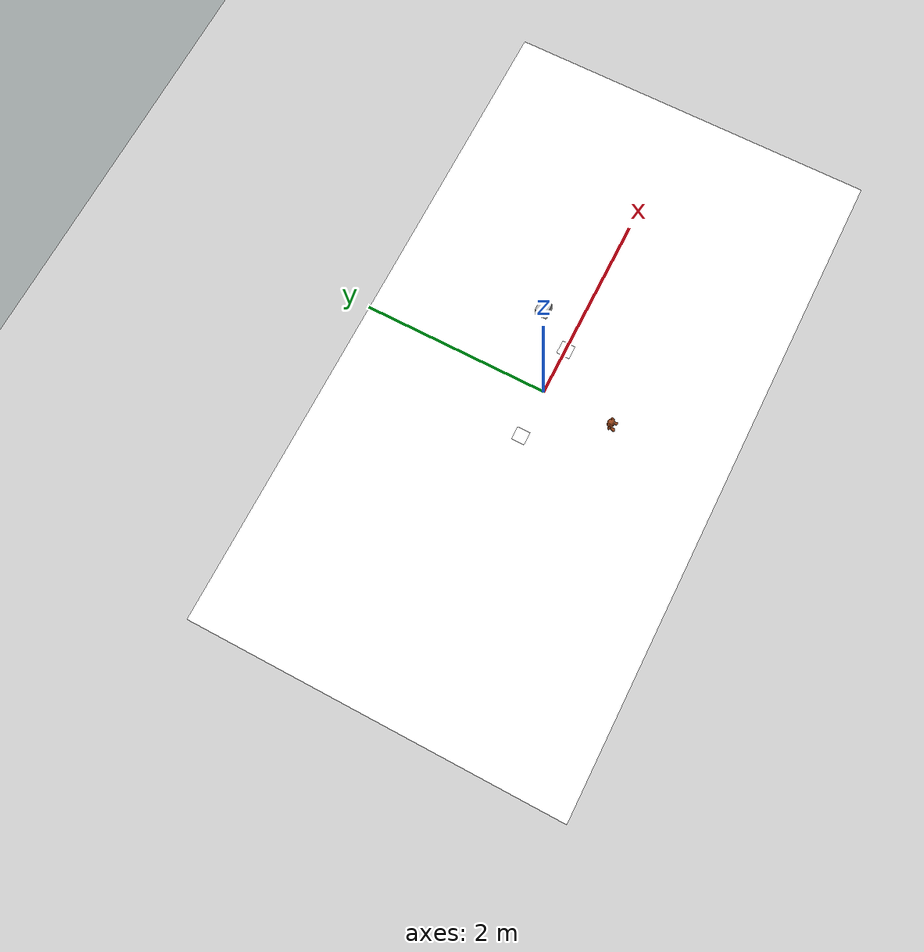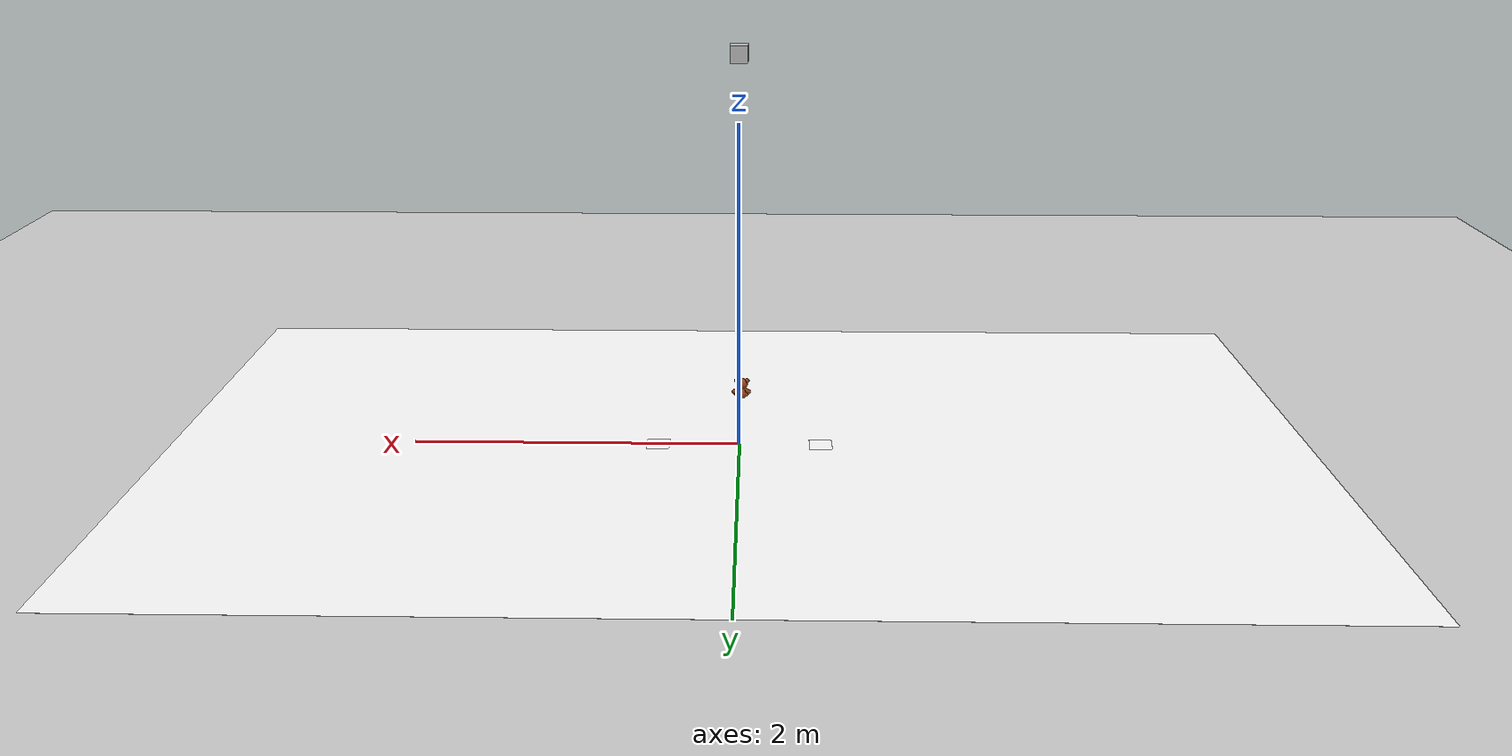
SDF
<sdf version="1.4">
 <world name="default">
  <include><uri>model://ground_plane</uri></include>
  <include><uri>model://circuit</uri><name>circuit</name><pose>0.0 -0.00 0.001 0 0 1.5708</pose></include>
  <include><uri>model://sun</uri></include>
  <include><uri>model://ros_camera</uri><name>camera1</name><pose>0.0 0.0 2.4 0.0 1.5708 1.5708</pose></include>
  <include>
   <uri>model://aruco_visual_marker_0</uri>
   <name>aruco_marker_0</name>
   <pose>-0.5 -0.00 0.002 0 0 1.5708</pose>
  </include>
  <include>
   <uri>model://aruco_visual_marker_1</uri>
   <name>aruco_marker_1</name>
   <pose>0.5 -0.00 0.002 0 0 1.5708</pose>
  </include>
  <include><uri>model://osito_cafe</uri><name>osito_cafe_1</name><pose>0 -0.75 0 0 0 0</pose></include>
 </world>
</sdf>

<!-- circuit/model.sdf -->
<sdf version='1.5'>
  <model name='circuit'>

    <link name='marker'>
      <pose frame=''>0 0 0 0 0 0</pose>
      <visual name='visual'>
        <geometry>
          <box>
            <size>4.0 7.0 1e-04</size>
          </box>
        </geometry>
        <material>
          <script>
            <uri>model://circuit/materials/scripts</uri>
            <uri>model://circuit/materials/textures</uri>
            <name>Circuit/Mat</name>
          </script>
          <ambient>1 1 1 1</ambient>
          <diffuse>1 1 1 1</diffuse>
          <specular>0 0 0 1</specular>
          <emissive>1 1 1 0</emissive>
          <shader type='vertex'>
            <normal_map>__default__</normal_map>
          </shader>
        </material>
        <pose frame=''>0 0 0 0 -0 0</pose>
        <cast_shadows>1</cast_shadows>
        <transparency>0</transparency>
      </visual>
      <collision name='collision'>
        <laser_retro>0</laser_retro>
        <max_contacts>10</max_contacts>
        <pose frame=''>0 0 0 0 -0 0</pose>
        <geometry>
          <box>
            <size>4.0 7.0 1e-04</size>
          </box>
        </geometry>
      </collision>
    </link>

    <link name='marker_pad'>
      <pose frame='marker'>0 0 -1e-04 0 -0 0</pose>
      <visual name='visual'>
        <geometry>
          <box>
            <size>4.0 7.0 1e-04</size>
          </box>
        </geometry>
        <material>
          <lighting>0</lighting>
          <script>
            <uri>file://media/materials/scripts/gazebo.material</uri>
            <name>Gazebo/White</name>
          </script>
          <ambient>0.3 0.3 0.3 1</ambient>
          <diffuse>0.7 0.7 0.7 1</diffuse>
          <specular>0.01 0.01 0.01 1</specular>
          <emissive>1 1 1 0</emissive>
          <shader type='vertex'>
            <normal_map>__default__</normal_map>
          </shader>
        </material>
        <cast_shadows>1</cast_shadows>
        <transparency>0</transparency>
      </visual>
      <collision name='collision'>
        <laser_retro>0</laser_retro>
        <max_contacts>10</max_contacts>
        <pose frame=''>0 0 0 0 -0 0</pose>
        <geometry>
          <box>
            <size>4.0 7.0 1e-03</size>
          </box>
        </geometry>
        <surface>
          <friction>
            <ode>
              <mu>1e6</mu>
              <mu2>1e6</mu2>
            </ode>
          </friction>
        </surface>
      </collision>
    </link>

    <joint name='marker_JOINT_marker_pad' type='revolute'>
      <parent>marker</parent>
      <child>marker_pad</child>
      <pose frame=''>0 0 0 0 -0 0</pose>
      <axis>
        <xyz>0 0 1</xyz>
        <limit>
          <upper>0</upper>
          <lower>0</lower>
        </limit>
      </axis>
    </joint>

    <static>1</static>
    <allow_auto_disable>1</allow_auto_disable>

  </model>
</sdf>

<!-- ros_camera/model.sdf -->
<sdf version="1.5">
  <model name="camera">
    <pose>0 0 0.05 0 0 0</pose>
    <link name="link">
      <gravity>0</gravity>
      <inertial>
        <mass>0.1</mass>
        <inertia>
          <ixx>0.000166667</ixx>
          <iyy>0.000166667</iyy>
          <izz>0.000166667</izz>
        </inertia>
      </inertial>
      <collision name="collision">
        <geometry>
          <box>
            <size>0.1 0.1 0.1</size>
          </box>
        </geometry>
      </collision>
      <visual name="visual">
        <geometry>
          <box>
            <size>0.1 0.1 0.1</size>
          </box>
        </geometry>
      </visual>

      <sensor type="camera" name="camera1">
        <update_rate>30.0</update_rate>
        <camera name="head">
          <horizontal_fov>1.5</horizontal_fov>
          <image>
            <width>1920</width>
            <height>1080</height>
            <format>R8G8B8</format>
          </image>
          <clip> <!--What's this?-->
            <near>0.02</near>
            <far>300</far>
          </clip>
          <noise>
            <type>gaussian</type>
            <!-- Noise is sampled independently per pixel on each frame.
                 That pixel's noise value is added to each of its color
                 channels, which at that point lie in the range [0,1]. -->
            <mean>0.0</mean>
            <stddev>0.007</stddev>
          </noise>
        </camera>
        <plugin name="camera_controller" filename="libgazebo_ros_camera.so">
          <alwaysOn>true</alwaysOn>
          <updateRate>0.0</updateRate>
          <cameraName>camera</cameraName>
          <imageTopicName>image_raw</imageTopicName>
          <cameraInfoTopicName>camera_info</cameraInfoTopicName>
          <frameName>camera_link</frameName>
          <hackBaseline>0.07</hackBaseline>
          <distortionK1>0.0</distortionK1>
          <distortionK2>0.0</distortionK2>
          <distortionK3>0.0</distortionK3>
          <distortionT1>0.0</distortionT1>
          <distortionT2>0.0</distortionT2>
        </plugin>
    </sensor>

    </link>
  </model>
</sdf>

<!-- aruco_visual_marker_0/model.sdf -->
<sdf version='1.5'>
  <model name='aruco_visual_marker_0'>

    <link name='marker'>
      <pose frame=''>0 0 0 0 0 0</pose>
      <visual name='visual'>
        <geometry>
          <box>
            <size>0.14 0.14 1e-04</size>
          </box>
        </geometry>
        <material>
          <script>
            <uri>model://aruco_visual_marker_0/materials/scripts</uri>
            <uri>model://aruco_visual_marker_0/materials/textures</uri>
            <name>ArucoVisualMarker0/Marker</name>
          </script>
          <ambient>1 1 1 1</ambient>
          <diffuse>1 1 1 1</diffuse>
          <specular>0 0 0 1</specular>
          <emissive>1 1 1 0</emissive>
          <shader type='vertex'>
            <normal_map>__default__</normal_map>
          </shader>
        </material>
        <pose frame=''>0 0 0 0 -0 0</pose>
        <cast_shadows>1</cast_shadows>
        <transparency>0</transparency>
      </visual>
      <collision name='collision'>
        <laser_retro>0</laser_retro>
        <max_contacts>10</max_contacts>
        <pose frame=''>0 0 0 0 -0 0</pose>
        <geometry>
          <box>
            <size>0.14 0.14 1e-04</size>
          </box>
        </geometry>
      </collision>
    </link>

    <link name='marker_pad'>
      <pose frame='marker'>0 0 -1e-04 0 -0 0</pose>
      <visual name='visual'>
        <geometry>
          <box>
            <size>0.14 0.14 1e-04</size>
          </box>
        </geometry>
        <material>
          <lighting>0</lighting>
          <script>
            <uri>file://media/materials/scripts/gazebo.material</uri>
            <name>Gazebo/White</name>
          </script>
          <ambient>0.3 0.3 0.3 1</ambient>
          <diffuse>0.7 0.7 0.7 1</diffuse>
          <specular>0.01 0.01 0.01 1</specular>
          <emissive>1 1 1 0</emissive>
          <shader type='vertex'>
            <normal_map>__default__</normal_map>
          </shader>
        </material>
        <cast_shadows>1</cast_shadows>
        <transparency>0</transparency>
      </visual>
      <collision name='collision'>
        <laser_retro>0</laser_retro>
        <max_contacts>10</max_contacts>
        <pose frame=''>0 0 0 0 -0 0</pose>
        <geometry>
          <box>
            <size>0.14 0.14 1e-04</size>
          </box>
        </geometry>
      </collision>
    </link>

    <joint name='marker_JOINT_marker_pad' type='revolute'>
      <parent>marker</parent>
      <child>marker_pad</child>
      <pose frame=''>0 0 0 0 -0 0</pose>
      <axis>
        <xyz>0 0 1</xyz>
        <limit>
          <upper>0</upper>
          <lower>0</lower>
        </limit>
      </axis>
    </joint>

    <static>1</static>
    <allow_auto_disable>1</allow_auto_disable>

  </model>
</sdf>

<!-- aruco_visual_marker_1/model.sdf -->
<sdf version='1.5'>
  <model name='aruco_visual_marker_1'>

    <link name='marker'>
      <pose frame=''>0 0 0 0 0 0</pose>
      <visual name='visual'>
        <geometry>
          <box>
            <size>0.14 0.14 1e-04</size>
          </box>
        </geometry>
        <material>
          <script>
            <uri>model://aruco_visual_marker_1/materials/scripts</uri>
            <uri>model://aruco_visual_marker_1/materials/textures</uri>
            <name>ArucoVisualMarker1/Marker</name>
          </script>
          <ambient>1 1 1 1</ambient>
          <diffuse>1 1 1 1</diffuse>
          <specular>0 0 0 1</specular>
          <emissive>1 1 1 0</emissive>
          <shader type='vertex'>
            <normal_map>__default__</normal_map>
          </shader>
        </material>
        <pose frame=''>0 0 0 0 -0 0</pose>
        <cast_shadows>1</cast_shadows>
        <transparency>0</transparency>
      </visual>
      <collision name='collision'>
        <laser_retro>0</laser_retro>
        <max_contacts>10</max_contacts>
        <pose frame=''>0 0 0 0 -0 0</pose>
        <geometry>
          <box>
            <size>0.14 0.14 1e-04</size>
          </box>
        </geometry>
      </collision>
    </link>

    <link name='marker_pad'>
      <pose frame='marker'>0 0 -1e-04 0 -0 0</pose>
      <visual name='visual'>
        <geometry>
          <box>
            <size>0.14 0.14 1e-04</size>
          </box>
        </geometry>
        <material>
          <lighting>0</lighting>
          <script>
            <uri>file://media/materials/scripts/gazebo.material</uri>
            <name>Gazebo/White</name>
          </script>
          <ambient>0.3 0.3 0.3 1</ambient>
          <diffuse>0.7 0.7 0.7 1</diffuse>
          <specular>0.01 0.01 0.01 1</specular>
          <emissive>1 1 1 0</emissive>
          <shader type='vertex'>
            <normal_map>__default__</normal_map>
          </shader>
        </material>
        <cast_shadows>1</cast_shadows>
        <transparency>0</transparency>
      </visual>
      <collision name='collision'>
        <laser_retro>0</laser_retro>
        <max_contacts>10</max_contacts>
        <pose frame=''>0 0 0 0 -0 0</pose>
        <geometry>
          <box>
            <size>0.14 0.14 1e-04</size>
          </box>
        </geometry>
      </collision>
    </link>

    <joint name='marker_JOINT_marker_pad' type='revolute'>
      <parent>marker</parent>
      <child>marker_pad</child>
      <pose frame=''>0 0 0 0 -0 0</pose>
      <axis>
        <xyz>0 0 1</xyz>
        <limit>
          <upper>0</upper>
          <lower>0</lower>
        </limit>
      </axis>
    </joint>

    <static>1</static>
    <allow_auto_disable>1</allow_auto_disable>

  </model>
</sdf>

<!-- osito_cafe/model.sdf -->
<sdf version='1.5'>
  <model name ="osito_cafe">

    <link name="base_link"></link>

    <link name="link">
      <pose>0 0 0.07 0 0 0</pose>
      <inertial>
        <mass>0.1</mass>
        <inertia>
          <ixx>0.01</ixx>
          <ixy>0.0</ixy>
          <ixz>0.0</ixz>
          <iyy>0.01</iyy>
          <iyz>0.0</iyz>
          <izz>0.01</izz>
        </inertia>
      </inertial>
      <collision name="collision">
        <geometry>
          <box>
            <size>0.1 0.05 0.14</size>
          </box>
        </geometry>
      </collision>
      <visual name="visual">
        <geometry>
          <mesh>
            <uri> model://osito_cafe/meshes/cafe.dae </uri>
          </mesh>
        </geometry>
      </visual>
    </link>

    <joint name='joint' type='fixed'>
      <child>link</child>
      <parent>base_link</parent>
      <axis>
          <xyz>0.000000 0.000000 1.000000</xyz>
      </axis>
    </joint>

  </model>
</sdf>
